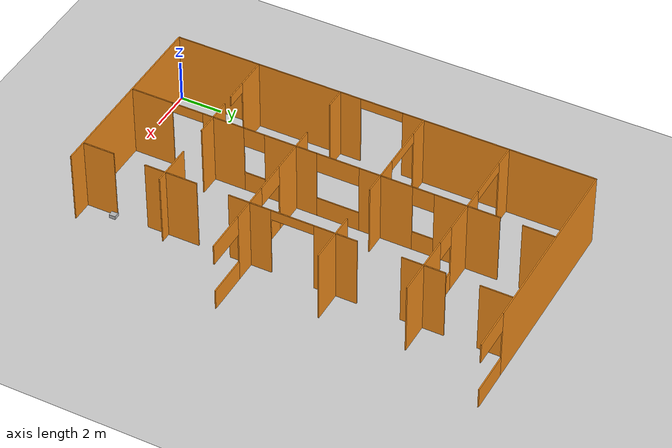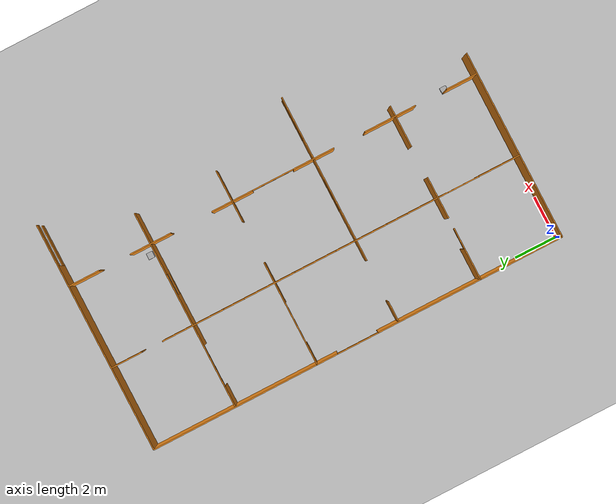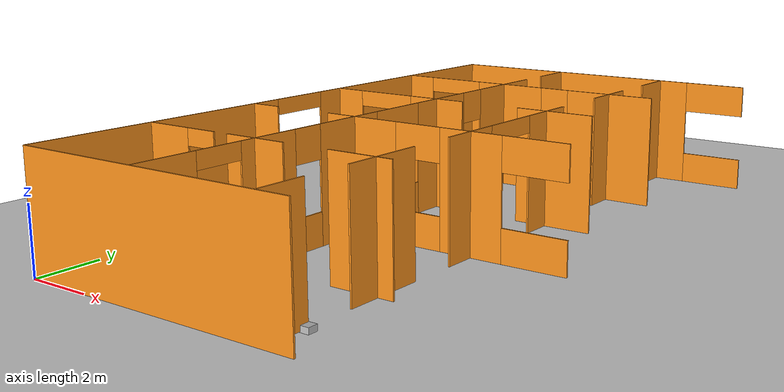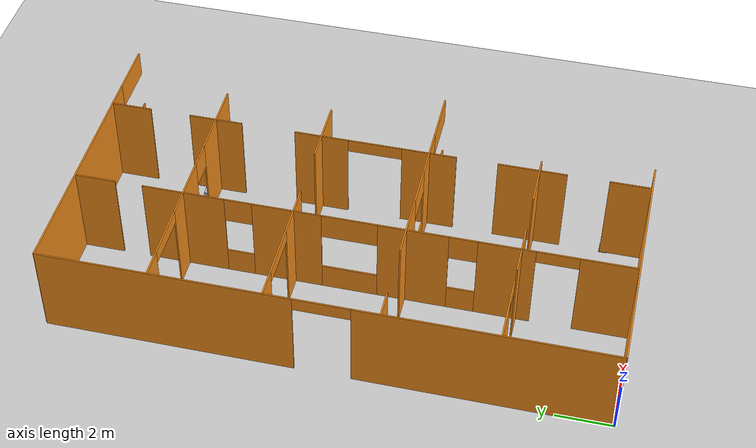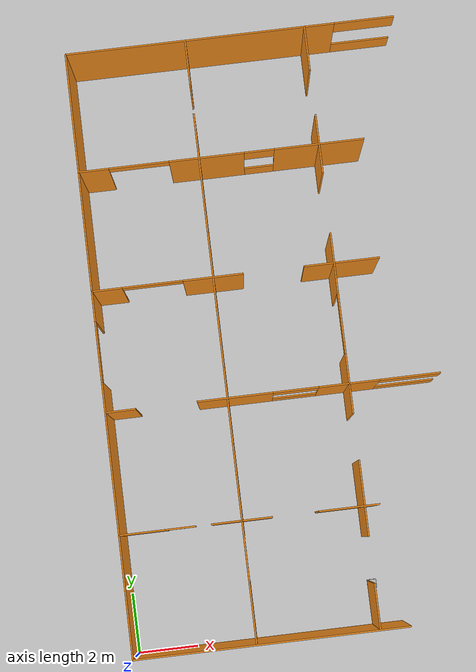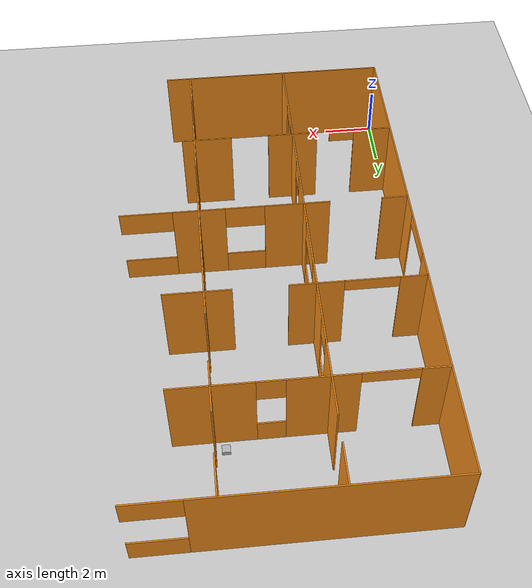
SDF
<sdf version="1.6">
 <world name="default">
  <include><uri>model://rirpc_box</uri><name>cube_3</name><pose>8.125 1.375 0 0 0 0</pose></include>
  <include><uri>model://rirpc_box</uri><name>cube_1</name><pose>7.625 16.375 0 0 0 0</pose></include>
  <model name="window_14">
   <pose>6.0 16.0 1.75 0 0 -3.141592653589793</pose>
   <link name="top">
    <pose>0 0 1.25 0 0 0</pose>
    <inertial>
     <mass>1</mass>
     <inertia><ixx>0</ixx><ixy>0</ixy><ixz>0</ixz><iyy>0</iyy><iyz>0</iyz><izz>0</izz></inertia>
    </inertial>
    <collision name="collision"><geometry><box><size>1.0 0.05 1.0</size></box></geometry></collision>
    <visual name="visual">
     <geometry><box><size>1.0 0.05 1.0</size></box></geometry>
     <material>
      <script><name>Gazebo/Orange</name><uri>file://media/materials/scripts/gazebo.material</uri></script>
     </material>
    </visual>
   </link>
   <link name="bot">
    <pose>0 0 -1.25 0 0 0</pose>
    <inertial>
     <mass>1</mass>
     <inertia><ixx>0</ixx><ixy>0</ixy><ixz>0</ixz><iyy>0</iyy><iyz>0</iyz><izz>0</izz></inertia>
    </inertial>
    <collision name="collision"><geometry><box><size>1.0 0.05 1.0</size></box></geometry></collision>
    <visual name="visual">
     <geometry><box><size>1.0 0.05 1.0</size></box></geometry>
     <material>
      <script><name>Gazebo/Orange</name><uri>file://media/materials/scripts/gazebo.material</uri></script>
     </material>
    </visual>
   </link>
   <static>1</static>
  </model>
  <model name="window_13">
   <pose>6.25 8.0 1.75 0 0 -3.141592653589793</pose>
   <link name="top">
    <pose>0 0 1.25 0 0 0</pose>
    <inertial>
     <mass>1</mass>
     <inertia><ixx>0</ixx><ixy>0</ixy><ixz>0</ixz><iyy>0</iyy><iyz>0</iyz><izz>0</izz></inertia>
    </inertial>
    <collision name="collision"><geometry><box><size>1.5 0.05 1.0</size></box></geometry></collision>
    <visual name="visual">
     <geometry><box><size>1.5 0.05 1.0</size></box></geometry>
     <material>
      <script><name>Gazebo/Orange</name><uri>file://media/materials/scripts/gazebo.material</uri></script>
     </material>
    </visual>
   </link>
   <link name="bot">
    <pose>0 0 -1.25 0 0 0</pose>
    <inertial>
     <mass>1</mass>
     <inertia><ixx>0</ixx><ixy>0</ixy><ixz>0</ixz><iyy>0</iyy><iyz>0</iyz><izz>0</izz></inertia>
    </inertial>
    <collision name="collision"><geometry><box><size>1.5 0.05 1.0</size></box></geometry></collision>
    <visual name="visual">
     <geometry><box><size>1.5 0.05 1.0</size></box></geometry>
     <material>
      <script><name>Gazebo/Orange</name><uri>file://media/materials/scripts/gazebo.material</uri></script>
     </material>
    </visual>
   </link>
   <static>1</static>
  </model>
  <model name="window_12">
   <pose>10.0 8.0 1.75 0 0 -3.141592653589793</pose>
   <link name="top">
    <pose>0 0 1.25 0 0 0</pose>
    <inertial>
     <mass>1</mass>
     <inertia><ixx>0</ixx><ixy>0</ixy><ixz>0</ixz><iyy>0</iyy><iyz>0</iyz><izz>0</izz></inertia>
    </inertial>
    <collision name="collision"><geometry><box><size>2.0 0.05 1.0</size></box></geometry></collision>
    <visual name="visual">
     <geometry><box><size>2.0 0.05 1.0</size></box></geometry>
     <material>
      <script><name>Gazebo/Orange</name><uri>file://media/materials/scripts/gazebo.material</uri></script>
     </material>
    </visual>
   </link>
   <link name="bot">
    <pose>0 0 -1.25 0 0 0</pose>
    <inertial>
     <mass>1</mass>
     <inertia><ixx>0</ixx><ixy>0</ixy><ixz>0</ixz><iyy>0</iyy><iyz>0</iyz><izz>0</izz></inertia>
    </inertial>
    <collision name="collision"><geometry><box><size>2.0 0.05 1.0</size></box></geometry></collision>
    <visual name="visual">
     <geometry><box><size>2.0 0.05 1.0</size></box></geometry>
     <material>
      <script><name>Gazebo/Orange</name><uri>file://media/materials/scripts/gazebo.material</uri></script>
     </material>
    </visual>
   </link>
   <static>1</static>
  </model>
  <model name="window_6">
   <pose>4.0 10.0 1.75 0 0 1.5707963267948966</pose>
   <link name="top">
    <pose>0 0 1.25 0 0 0</pose>
    <inertial>
     <mass>1</mass>
     <inertia><ixx>0</ixx><ixy>0</ixy><ixz>0</ixz><iyy>0</iyy><iyz>0</iyz><izz>0</izz></inertia>
    </inertial>
    <collision name="collision"><geometry><box><size>2.0 0.05 1.0</size></box></geometry></collision>
    <visual name="visual">
     <geometry><box><size>2.0 0.05 1.0</size></box></geometry>
     <material>
      <script><name>Gazebo/Orange</name><uri>file://media/materials/scripts/gazebo.material</uri></script>
     </material>
    </visual>
   </link>
   <link name="bot">
    <pose>0 0 -1.25 0 0 0</pose>
    <inertial>
     <mass>1</mass>
     <inertia><ixx>0</ixx><ixy>0</ixy><ixz>0</ixz><iyy>0</iyy><iyz>0</iyz><izz>0</izz></inertia>
    </inertial>
    <collision name="collision"><geometry><box><size>2.0 0.05 1.0</size></box></geometry></collision>
    <visual name="visual">
     <geometry><box><size>2.0 0.05 1.0</size></box></geometry>
     <material>
      <script><name>Gazebo/Orange</name><uri>file://media/materials/scripts/gazebo.material</uri></script>
     </material>
    </visual>
   </link>
   <static>1</static>
  </model>
  <model name="window_5">
   <pose>4.0 14.0 1.75 0 0 1.5707963267948966</pose>
   <link name="top">
    <pose>0 0 1.25 0 0 0</pose>
    <inertial>
     <mass>1</mass>
     <inertia><ixx>0</ixx><ixy>0</ixy><ixz>0</ixz><iyy>0</iyy><iyz>0</iyz><izz>0</izz></inertia>
    </inertial>
    <collision name="collision"><geometry><box><size>1.0 0.05 1.0</size></box></geometry></collision>
    <visual name="visual">
     <geometry><box><size>1.0 0.05 1.0</size></box></geometry>
     <material>
      <script><name>Gazebo/Orange</name><uri>file://media/materials/scripts/gazebo.material</uri></script>
     </material>
    </visual>
   </link>
   <link name="bot">
    <pose>0 0 -1.25 0 0 0</pose>
    <inertial>
     <mass>1</mass>
     <inertia><ixx>0</ixx><ixy>0</ixy><ixz>0</ixz><iyy>0</iyy><iyz>0</iyz><izz>0</izz></inertia>
    </inertial>
    <collision name="collision"><geometry><box><size>1.0 0.05 1.0</size></box></geometry></collision>
    <visual name="visual">
     <geometry><box><size>1.0 0.05 1.0</size></box></geometry>
     <material>
      <script><name>Gazebo/Orange</name><uri>file://media/materials/scripts/gazebo.material</uri></script>
     </material>
    </visual>
   </link>
   <static>1</static>
  </model>
  <model name="window_4">
   <pose>4.0 6.0 1.75 0 0 1.5707963267948966</pose>
   <link name="top">
    <pose>0 0 1.25 0 0 0</pose>
    <inertial>
     <mass>1</mass>
     <inertia><ixx>0</ixx><ixy>0</ixy><ixz>0</ixz><iyy>0</iyy><iyz>0</iyz><izz>0</izz></inertia>
    </inertial>
    <collision name="collision"><geometry><box><size>1.0 0.05 1.0</size></box></geometry></collision>
    <visual name="visual">
     <geometry><box><size>1.0 0.05 1.0</size></box></geometry>
     <material>
      <script><name>Gazebo/Orange</name><uri>file://media/materials/scripts/gazebo.material</uri></script>
     </material>
    </visual>
   </link>
   <link name="bot">
    <pose>0 0 -1.25 0 0 0</pose>
    <inertial>
     <mass>1</mass>
     <inertia><ixx>0</ixx><ixy>0</ixy><ixz>0</ixz><iyy>0</iyy><iyz>0</iyz><izz>0</izz></inertia>
    </inertial>
    <collision name="collision"><geometry><box><size>1.0 0.05 1.0</size></box></geometry></collision>
    <visual name="visual">
     <geometry><box><size>1.0 0.05 1.0</size></box></geometry>
     <material>
      <script><name>Gazebo/Orange</name><uri>file://media/materials/scripts/gazebo.material</uri></script>
     </material>
    </visual>
   </link>
   <static>1</static>
  </model>
  <model name="window_3">
   <pose>10.0 20.0 1.75 0 0 -0.0</pose>
   <link name="top">
    <pose>0 0 1.25 0 0 0</pose>
    <inertial>
     <mass>1</mass>
     <inertia><ixx>0</ixx><ixy>0</ixy><ixz>0</ixz><iyy>0</iyy><iyz>0</iyz><izz>0</izz></inertia>
    </inertial>
    <collision name="collision"><geometry><box><size>2.0 0.05 1.0</size></box></geometry></collision>
    <visual name="visual">
     <geometry><box><size>2.0 0.05 1.0</size></box></geometry>
     <material>
      <script><name>Gazebo/Orange</name><uri>file://media/materials/scripts/gazebo.material</uri></script>
     </material>
    </visual>
   </link>
   <link name="bot">
    <pose>0 0 -1.25 0 0 0</pose>
    <inertial>
     <mass>1</mass>
     <inertia><ixx>0</ixx><ixy>0</ixy><ixz>0</ixz><iyy>0</iyy><iyz>0</iyz><izz>0</izz></inertia>
    </inertial>
    <collision name="collision"><geometry><box><size>2.0 0.05 1.0</size></box></geometry></collision>
    <visual name="visual">
     <geometry><box><size>2.0 0.05 1.0</size></box></geometry>
     <material>
      <script><name>Gazebo/Orange</name><uri>file://media/materials/scripts/gazebo.material</uri></script>
     </material>
    </visual>
   </link>
   <static>1</static>
  </model>
  <model name="box_66">
   <pose>2.0 12.0 3.25 0 0 -3.141592653589793</pose>
   <link name="link">
    <inertial>
     <mass>1</mass>
     <inertia><ixx>0</ixx><ixy>0</ixy><ixz>0</ixz><iyy>0</iyy><iyz>0</iyz><izz>0</izz></inertia>
    </inertial>
    <collision name="collision"><geometry><box><size>2.0 0.05 0.5</size></box></geometry></collision>
    <visual name="visual">
     <geometry><box><size>2.0 0.05 0.5</size></box></geometry>
     <material>
      <script><name>Gazebo/Orange</name><uri>file://media/materials/scripts/gazebo.material</uri></script>
     </material>
    </visual>
   </link>
   <static>1</static>
  </model>
  <model name="box_65">
   <pose>4.0 2.75 3.25 0 0 1.5707963267948966</pose>
   <link name="link">
    <inertial>
     <mass>1</mass>
     <inertia><ixx>0</ixx><ixy>0</ixy><ixz>0</ixz><iyy>0</iyy><iyz>0</iyz><izz>0</izz></inertia>
    </inertial>
    <collision name="collision"><geometry><box><size>1.5 0.05 0.5</size></box></geometry></collision>
    <visual name="visual">
     <geometry><box><size>1.5 0.05 0.5</size></box></geometry>
     <material>
      <script><name>Gazebo/Orange</name><uri>file://media/materials/scripts/gazebo.material</uri></script>
     </material>
    </visual>
   </link>
   <static>1</static>
  </model>
  <model name="box_60">
   <pose>8.0 10.0 3.25 0 0 1.5707963267948966</pose>
   <link name="link">
    <inertial>
     <mass>1</mass>
     <inertia><ixx>0</ixx><ixy>0</ixy><ixz>0</ixz><iyy>0</iyy><iyz>0</iyz><izz>0</izz></inertia>
    </inertial>
    <collision name="collision"><geometry><box><size>2.0 0.05 0.5</size></box></geometry></collision>
    <visual name="visual">
     <geometry><box><size>2.0 0.05 0.5</size></box></geometry>
     <material>
      <script><name>Gazebo/Orange</name><uri>file://media/materials/scripts/gazebo.material</uri></script>
     </material>
    </visual>
   </link>
   <static>1</static>
  </model>
  <model name="box_59">
   <pose>2.0 4.0 3.25 0 0 -3.141592653589793</pose>
   <link name="link">
    <inertial>
     <mass>1</mass>
     <inertia><ixx>0</ixx><ixy>0</ixy><ixz>0</ixz><iyy>0</iyy><iyz>0</iyz><izz>0</izz></inertia>
    </inertial>
    <collision name="collision"><geometry><box><size>1.0 0.05 0.5</size></box></geometry></collision>
    <visual name="visual">
     <geometry><box><size>1.0 0.05 0.5</size></box></geometry>
     <material>
      <script><name>Gazebo/Orange</name><uri>file://media/materials/scripts/gazebo.material</uri></script>
     </material>
    </visual>
   </link>
   <static>1</static>
  </model>
  <model name="box_58">
   <pose>2.0 16.0 3.25 0 0 -3.141592653589793</pose>
   <link name="link">
    <inertial>
     <mass>1</mass>
     <inertia><ixx>0</ixx><ixy>0</ixy><ixz>0</ixz><iyy>0</iyy><iyz>0</iyz><izz>0</izz></inertia>
    </inertial>
    <collision name="collision"><geometry><box><size>2.0 0.05 0.5</size></box></geometry></collision>
    <visual name="visual">
     <geometry><box><size>2.0 0.05 0.5</size></box></geometry>
     <material>
      <script><name>Gazebo/Orange</name><uri>file://media/materials/scripts/gazebo.material</uri></script>
     </material>
    </visual>
   </link>
   <static>1</static>
  </model>
  <model name="box_57">
   <pose>0.0 10.0 3.25 0 0 -1.5707963267948966</pose>
   <link name="link">
    <inertial>
     <mass>1</mass>
     <inertia><ixx>0</ixx><ixy>0</ixy><ixz>0</ixz><iyy>0</iyy><iyz>0</iyz><izz>0</izz></inertia>
    </inertial>
    <collision name="collision"><geometry><box><size>2.0 0.05 0.5</size></box></geometry></collision>
    <visual name="visual">
     <geometry><box><size>2.0 0.05 0.5</size></box></geometry>
     <material>
      <script><name>Gazebo/Orange</name><uri>file://media/materials/scripts/gazebo.material</uri></script>
     </material>
    </visual>
   </link>
   <static>1</static>
  </model>
  <model name="box_55">
   <pose>8.0 16.0 1.75 0 0 1.5707963267948966</pose>
   <link name="link">
    <inertial>
     <mass>1</mass>
     <inertia><ixx>0</ixx><ixy>0</ixy><ixz>0</ixz><iyy>0</iyy><iyz>0</iyz><izz>0</izz></inertia>
    </inertial>
    <collision name="collision"><geometry><box><size>2.0 0.05 3.5</size></box></geometry></collision>
    <visual name="visual">
     <geometry><box><size>2.0 0.05 3.5</size></box></geometry>
     <material>
      <script><name>Gazebo/Orange</name><uri>file://media/materials/scripts/gazebo.material</uri></script>
     </material>
    </visual>
   </link>
   <static>1</static>
  </model>
  <model name="box_54">
   <pose>8.0 16.0 1.75 0 0 -3.141592653589793</pose>
   <link name="link">
    <inertial>
     <mass>1</mass>
     <inertia><ixx>0</ixx><ixy>0</ixy><ixz>0</ixz><iyy>0</iyy><iyz>0</iyz><izz>0</izz></inertia>
    </inertial>
    <collision name="collision"><geometry><box><size>3.0 0.05 3.5</size></box></geometry></collision>
    <visual name="visual">
     <geometry><box><size>3.0 0.05 3.5</size></box></geometry>
     <material>
      <script><name>Gazebo/Orange</name><uri>file://media/materials/scripts/gazebo.material</uri></script>
     </material>
    </visual>
   </link>
   <static>1</static>
  </model>
  <model name="box_53">
   <pose>8.25 12.0 1.75 0 0 -3.141592653589793</pose>
   <link name="link">
    <inertial>
     <mass>1</mass>
     <inertia><ixx>0</ixx><ixy>0</ixy><ixz>0</ixz><iyy>0</iyy><iyz>0</iyz><izz>0</izz></inertia>
    </inertial>
    <collision name="collision"><geometry><box><size>2.5 0.05 3.5</size></box></geometry></collision>
    <visual name="visual">
     <geometry><box><size>2.5 0.05 3.5</size></box></geometry>
     <material>
      <script><name>Gazebo/Orange</name><uri>file://media/materials/scripts/gazebo.material</uri></script>
     </material>
    </visual>
   </link>
   <static>1</static>
  </model>
  <model name="box_52">
   <pose>8.0 12.0 1.75 0 0 -1.5707963267948966</pose>
   <link name="link">
    <inertial>
     <mass>1</mass>
     <inertia><ixx>0</ixx><ixy>0</ixy><ixz>0</ixz><iyy>0</iyy><iyz>0</iyz><izz>0</izz></inertia>
    </inertial>
    <collision name="collision"><geometry><box><size>2.0 0.05 3.5</size></box></geometry></collision>
    <visual name="visual">
     <geometry><box><size>2.0 0.05 3.5</size></box></geometry>
     <material>
      <script><name>Gazebo/Orange</name><uri>file://media/materials/scripts/gazebo.material</uri></script>
     </material>
    </visual>
   </link>
   <static>1</static>
  </model>
  <model name="box_51">
   <pose>4.0 7.75 1.75 0 0 1.5707963267948966</pose>
   <link name="link">
    <inertial>
     <mass>1</mass>
     <inertia><ixx>0</ixx><ixy>0</ixy><ixz>0</ixz><iyy>0</iyy><iyz>0</iyz><izz>0</izz></inertia>
    </inertial>
    <collision name="collision"><geometry><box><size>2.5 0.05 3.5</size></box></geometry></collision>
    <visual name="visual">
     <geometry><box><size>2.5 0.05 3.5</size></box></geometry>
     <material>
      <script><name>Gazebo/Orange</name><uri>file://media/materials/scripts/gazebo.material</uri></script>
     </material>
    </visual>
   </link>
   <static>1</static>
  </model>
  <model name="box_50">
   <pose>4.25 8.0 1.75 0 0 -3.141592653589793</pose>
   <link name="link">
    <inertial>
     <mass>1</mass>
     <inertia><ixx>0</ixx><ixy>0</ixy><ixz>0</ixz><iyy>0</iyy><iyz>0</iyz><izz>0</izz></inertia>
    </inertial>
    <collision name="collision"><geometry><box><size>2.5 0.05 3.5</size></box></geometry></collision>
    <visual name="visual">
     <geometry><box><size>2.5 0.05 3.5</size></box></geometry>
     <material>
      <script><name>Gazebo/Orange</name><uri>file://media/materials/scripts/gazebo.material</uri></script>
     </material>
    </visual>
   </link>
   <static>1</static>
  </model>
  <model name="box_40">
   <pose>8.0 0.75 1.75 0 0 1.5707963267948966</pose>
   <link name="link">
    <inertial>
     <mass>1</mass>
     <inertia><ixx>0</ixx><ixy>0</ixy><ixz>0</ixz><iyy>0</iyy><iyz>0</iyz><izz>0</izz></inertia>
    </inertial>
    <collision name="collision"><geometry><box><size>1.5 0.05 3.5</size></box></geometry></collision>
    <visual name="visual">
     <geometry><box><size>1.5 0.05 3.5</size></box></geometry>
     <material>
      <script><name>Gazebo/Orange</name><uri>file://media/materials/scripts/gazebo.material</uri></script>
     </material>
    </visual>
   </link>
   <static>1</static>
  </model>
  <model name="box_39">
   <pose>4.0 1.0 1.75 0 0 1.5707963267948966</pose>
   <link name="link">
    <inertial>
     <mass>1</mass>
     <inertia><ixx>0</ixx><ixy>0</ixy><ixz>0</ixz><iyy>0</iyy><iyz>0</iyz><izz>0</izz></inertia>
    </inertial>
    <collision name="collision"><geometry><box><size>2.0 0.05 3.5</size></box></geometry></collision>
    <visual name="visual">
     <geometry><box><size>2.0 0.05 3.5</size></box></geometry>
     <material>
      <script><name>Gazebo/Orange</name><uri>file://media/materials/scripts/gazebo.material</uri></script>
     </material>
    </visual>
   </link>
   <static>1</static>
  </model>
  <model name="box_38">
   <pose>4.0 4.0 1.75 0 0 -3.141592653589793</pose>
   <link name="link">
    <inertial>
     <mass>1</mass>
     <inertia><ixx>0</ixx><ixy>0</ixy><ixz>0</ixz><iyy>0</iyy><iyz>0</iyz><izz>0</izz></inertia>
    </inertial>
    <collision name="collision"><geometry><box><size>2.0 0.05 3.5</size></box></geometry></collision>
    <visual name="visual">
     <geometry><box><size>2.0 0.05 3.5</size></box></geometry>
     <material>
      <script><name>Gazebo/Orange</name><uri>file://media/materials/scripts/gazebo.material</uri></script>
     </material>
    </visual>
   </link>
   <static>1</static>
  </model>
  <model name="box_37">
   <pose>4.0 4.5 1.75 0 0 1.5707963267948966</pose>
   <link name="link">
    <inertial>
     <mass>1</mass>
     <inertia><ixx>0</ixx><ixy>0</ixy><ixz>0</ixz><iyy>0</iyy><iyz>0</iyz><izz>0</izz></inertia>
    </inertial>
    <collision name="collision"><geometry><box><size>2.0 0.05 3.5</size></box></geometry></collision>
    <visual name="visual">
     <geometry><box><size>2.0 0.05 3.5</size></box></geometry>
     <material>
      <script><name>Gazebo/Orange</name><uri>file://media/materials/scripts/gazebo.material</uri></script>
     </material>
    </visual>
   </link>
   <static>1</static>
  </model>
  <model name="box_36">
   <pose>4.0 12.25 1.75 0 0 1.5707963267948966</pose>
   <link name="link">
    <inertial>
     <mass>1</mass>
     <inertia><ixx>0</ixx><ixy>0</ixy><ixz>0</ixz><iyy>0</iyy><iyz>0</iyz><izz>0</izz></inertia>
    </inertial>
    <collision name="collision"><geometry><box><size>2.5 0.05 3.5</size></box></geometry></collision>
    <visual name="visual">
     <geometry><box><size>2.5 0.05 3.5</size></box></geometry>
     <material>
      <script><name>Gazebo/Orange</name><uri>file://media/materials/scripts/gazebo.material</uri></script>
     </material>
    </visual>
   </link>
   <static>1</static>
  </model>
  <model name="box_35">
   <pose>4.0 12.0 1.75 0 0 -3.141592653589793</pose>
   <link name="link">
    <inertial>
     <mass>1</mass>
     <inertia><ixx>0</ixx><ixy>0</ixy><ixz>0</ixz><iyy>0</iyy><iyz>0</iyz><izz>0</izz></inertia>
    </inertial>
    <collision name="collision"><geometry><box><size>2.0 0.05 3.5</size></box></geometry></collision>
    <visual name="visual">
     <geometry><box><size>2.0 0.05 3.5</size></box></geometry>
     <material>
      <script><name>Gazebo/Orange</name><uri>file://media/materials/scripts/gazebo.material</uri></script>
     </material>
    </visual>
   </link>
   <static>1</static>
  </model>
  <model name="box_34">
   <pose>8.0 8.0 1.75 0 0 1.5707963267948966</pose>
   <link name="link">
    <inertial>
     <mass>1</mass>
     <inertia><ixx>0</ixx><ixy>0</ixy><ixz>0</ixz><iyy>0</iyy><iyz>0</iyz><izz>0</izz></inertia>
    </inertial>
    <collision name="collision"><geometry><box><size>2.0 0.05 3.5</size></box></geometry></collision>
    <visual name="visual">
     <geometry><box><size>2.0 0.05 3.5</size></box></geometry>
     <material>
      <script><name>Gazebo/Orange</name><uri>file://media/materials/scripts/gazebo.material</uri></script>
     </material>
    </visual>
   </link>
   <static>1</static>
  </model>
  <model name="box_33">
   <pose>8.0 8.0 1.75 0 0 -3.141592653589793</pose>
   <link name="link">
    <inertial>
     <mass>1</mass>
     <inertia><ixx>0</ixx><ixy>0</ixy><ixz>0</ixz><iyy>0</iyy><iyz>0</iyz><izz>0</izz></inertia>
    </inertial>
    <collision name="collision"><geometry><box><size>2.0 0.05 3.5</size></box></geometry></collision>
    <visual name="visual">
     <geometry><box><size>2.0 0.05 3.5</size></box></geometry>
     <material>
      <script><name>Gazebo/Orange</name><uri>file://media/materials/scripts/gazebo.material</uri></script>
     </material>
    </visual>
   </link>
   <static>1</static>
  </model>
  <model name="box_32">
   <pose>8.0 4.25 1.75 0 0 1.5707963267948966</pose>
   <link name="link">
    <inertial>
     <mass>1</mass>
     <inertia><ixx>0</ixx><ixy>0</ixy><ixz>0</ixz><iyy>0</iyy><iyz>0</iyz><izz>0</izz></inertia>
    </inertial>
    <collision name="collision"><geometry><box><size>2.5 0.05 3.5</size></box></geometry></collision>
    <visual name="visual">
     <geometry><box><size>2.5 0.05 3.5</size></box></geometry>
     <material>
      <script><name>Gazebo/Orange</name><uri>file://media/materials/scripts/gazebo.material</uri></script>
     </material>
    </visual>
   </link>
   <static>1</static>
  </model>
  <model name="box_31">
   <pose>7.5 4.0 1.75 0 0 -3.141592653589793</pose>
   <link name="link">
    <inertial>
     <mass>1</mass>
     <inertia><ixx>0</ixx><ixy>0</ixy><ixz>0</ixz><iyy>0</iyy><iyz>0</iyz><izz>0</izz></inertia>
    </inertial>
    <collision name="collision"><geometry><box><size>2.0 0.05 3.5</size></box></geometry></collision>
    <visual name="visual">
     <geometry><box><size>2.0 0.05 3.5</size></box></geometry>
     <material>
      <script><name>Gazebo/Orange</name><uri>file://media/materials/scripts/gazebo.material</uri></script>
     </material>
    </visual>
   </link>
   <static>1</static>
  </model>
  <model name="box_26">
   <pose>0.75 4.0 1.75 0 0 -3.141592653589793</pose>
   <link name="link">
    <inertial>
     <mass>1</mass>
     <inertia><ixx>0</ixx><ixy>0</ixy><ixz>0</ixz><iyy>0</iyy><iyz>0</iyz><izz>0</izz></inertia>
    </inertial>
    <collision name="collision"><geometry><box><size>1.5 0.05 3.5</size></box></geometry></collision>
    <visual name="visual">
     <geometry><box><size>1.5 0.05 3.5</size></box></geometry>
     <material>
      <script><name>Gazebo/Orange</name><uri>file://media/materials/scripts/gazebo.material</uri></script>
     </material>
    </visual>
   </link>
   <static>1</static>
  </model>
  <model name="box_25">
   <pose>0.5 8.0 1.75 0 0 -3.141592653589793</pose>
   <link name="link">
    <inertial>
     <mass>1</mass>
     <inertia><ixx>0</ixx><ixy>0</ixy><ixz>0</ixz><iyy>0</iyy><iyz>0</iyz><izz>0</izz></inertia>
    </inertial>
    <collision name="collision"><geometry><box><size>1.0 0.05 3.5</size></box></geometry></collision>
    <visual name="visual">
     <geometry><box><size>1.0 0.05 3.5</size></box></geometry>
     <material>
      <script><name>Gazebo/Orange</name><uri>file://media/materials/scripts/gazebo.material</uri></script>
     </material>
    </visual>
   </link>
   <static>1</static>
  </model>
  <model name="box_24">
   <pose>0.5 12.0 1.75 0 0 -3.141592653589793</pose>
   <link name="link">
    <inertial>
     <mass>1</mass>
     <inertia><ixx>0</ixx><ixy>0</ixy><ixz>0</ixz><iyy>0</iyy><iyz>0</iyz><izz>0</izz></inertia>
    </inertial>
    <collision name="collision"><geometry><box><size>1.0 0.05 3.5</size></box></geometry></collision>
    <visual name="visual">
     <geometry><box><size>1.0 0.05 3.5</size></box></geometry>
     <material>
      <script><name>Gazebo/Orange</name><uri>file://media/materials/scripts/gazebo.material</uri></script>
     </material>
    </visual>
   </link>
   <static>1</static>
  </model>
  <model name="box_16">
   <pose>8.0 19.25 1.75 0 0 1.5707963267948966</pose>
   <link name="link">
    <inertial>
     <mass>1</mass>
     <inertia><ixx>0</ixx><ixy>0</ixy><ixz>0</ixz><iyy>0</iyy><iyz>0</iyz><izz>0</izz></inertia>
    </inertial>
    <collision name="collision"><geometry><box><size>1.5 0.05 3.5</size></box></geometry></collision>
    <visual name="visual">
     <geometry><box><size>1.5 0.05 3.5</size></box></geometry>
     <material>
      <script><name>Gazebo/Orange</name><uri>file://media/materials/scripts/gazebo.material</uri></script>
     </material>
    </visual>
   </link>
   <static>1</static>
  </model>
  <model name="box_12">
   <pose>4.0 16.0 1.75 0 0 1.5707963267948966</pose>
   <link name="link">
    <inertial>
     <mass>1</mass>
     <inertia><ixx>0</ixx><ixy>0</ixy><ixz>0</ixz><iyy>0</iyy><iyz>0</iyz><izz>0</izz></inertia>
    </inertial>
    <collision name="collision"><geometry><box><size>3.0 0.05 3.5</size></box></geometry></collision>
    <visual name="visual">
     <geometry><box><size>3.0 0.05 3.5</size></box></geometry>
     <material>
      <script><name>Gazebo/Orange</name><uri>file://media/materials/scripts/gazebo.material</uri></script>
     </material>
    </visual>
   </link>
   <static>1</static>
  </model>
  <model name="box_11">
   <pose>4.0 19.25 1.75 0 0 1.5707963267948966</pose>
   <link name="link">
    <inertial>
     <mass>1</mass>
     <inertia><ixx>0</ixx><ixy>0</ixy><ixz>0</ixz><iyy>0</iyy><iyz>0</iyz><izz>0</izz></inertia>
    </inertial>
    <collision name="collision"><geometry><box><size>1.5 0.05 3.5</size></box></geometry></collision>
    <visual name="visual">
     <geometry><box><size>1.5 0.05 3.5</size></box></geometry>
     <material>
      <script><name>Gazebo/Orange</name><uri>file://media/materials/scripts/gazebo.material</uri></script>
     </material>
    </visual>
   </link>
   <static>1</static>
  </model>
  <model name="box_10">
   <pose>4.25 16.0 1.75 0 0 -3.141592653589793</pose>
   <link name="link">
    <inertial>
     <mass>1</mass>
     <inertia><ixx>0</ixx><ixy>0</ixy><ixz>0</ixz><iyy>0</iyy><iyz>0</iyz><izz>0</izz></inertia>
    </inertial>
    <collision name="collision"><geometry><box><size>2.5 0.05 3.5</size></box></geometry></collision>
    <visual name="visual">
     <geometry><box><size>2.5 0.05 3.5</size></box></geometry>
     <material>
      <script><name>Gazebo/Orange</name><uri>file://media/materials/scripts/gazebo.material</uri></script>
     </material>
    </visual>
   </link>
   <static>1</static>
  </model>
  <model name="box_9">
   <pose>0.5 16.0 1.75 0 0 -3.141592653589793</pose>
   <link name="link">
    <inertial>
     <mass>1</mass>
     <inertia><ixx>0</ixx><ixy>0</ixy><ixz>0</ixz><iyy>0</iyy><iyz>0</iyz><izz>0</izz></inertia>
    </inertial>
    <collision name="collision"><geometry><box><size>1.0 0.05 3.5</size></box></geometry></collision>
    <visual name="visual">
     <geometry><box><size>1.0 0.05 3.5</size></box></geometry>
     <material>
      <script><name>Gazebo/Orange</name><uri>file://media/materials/scripts/gazebo.material</uri></script>
     </material>
    </visual>
   </link>
   <static>1</static>
  </model>
  <model name="box_6">
   <pose>4.5 20.0 1.75 0 0 -3.141592653589793</pose>
   <link name="link">
    <inertial>
     <mass>1</mass>
     <inertia><ixx>0</ixx><ixy>0</ixy><ixz>0</ixz><iyy>0</iyy><iyz>0</iyz><izz>0</izz></inertia>
    </inertial>
    <collision name="collision"><geometry><box><size>9.0 0.05 3.5</size></box></geometry></collision>
    <visual name="visual">
     <geometry><box><size>9.0 0.05 3.5</size></box></geometry>
     <material>
      <script><name>Gazebo/Orange</name><uri>file://media/materials/scripts/gazebo.material</uri></script>
     </material>
    </visual>
   </link>
   <static>1</static>
  </model>
  <model name="box_3">
   <pose>4.5 0.0 1.75 0 0 -3.141592653589793</pose>
   <link name="link">
    <inertial>
     <mass>1</mass>
     <inertia><ixx>0</ixx><ixy>0</ixy><ixz>0</ixz><iyy>0</iyy><iyz>0</iyz><izz>0</izz></inertia>
    </inertial>
    <collision name="collision"><geometry><box><size>9.0 0.05 3.5</size></box></geometry></collision>
    <visual name="visual">
     <geometry><box><size>9.0 0.05 3.5</size></box></geometry>
     <material>
      <script><name>Gazebo/Orange</name><uri>file://media/materials/scripts/gazebo.material</uri></script>
     </material>
    </visual>
   </link>
   <static>1</static>
  </model>
  <model name="box_2">
   <pose>0.0 15.5 1.75 0 0 -1.5707963267948966</pose>
   <link name="link">
    <inertial>
     <mass>1</mass>
     <inertia><ixx>0</ixx><ixy>0</ixy><ixz>0</ixz><iyy>0</iyy><iyz>0</iyz><izz>0</izz></inertia>
    </inertial>
    <collision name="collision"><geometry><box><size>9.0 0.05 3.5</size></box></geometry></collision>
    <visual name="visual">
     <geometry><box><size>9.0 0.05 3.5</size></box></geometry>
     <material>
      <script><name>Gazebo/Orange</name><uri>file://media/materials/scripts/gazebo.material</uri></script>
     </material>
    </visual>
   </link>
   <static>1</static>
  </model>
  <model name="box_1">
   <pose>0.0 4.5 1.75 0 0 1.5707963267948966</pose>
   <link name="link">
    <inertial>
     <mass>1</mass>
     <inertia><ixx>0</ixx><ixy>0</ixy><ixz>0</ixz><iyy>0</iyy><iyz>0</iyz><izz>0</izz></inertia>
    </inertial>
    <collision name="collision"><geometry><box><size>9.0 0.05 3.5</size></box></geometry></collision>
    <visual name="visual">
     <geometry><box><size>9.0 0.05 3.5</size></box></geometry>
     <material>
      <script><name>Gazebo/Orange</name><uri>file://media/materials/scripts/gazebo.material</uri></script>
     </material>
    </visual>
   </link>
   <static>1</static>
  </model>
  <model name="ground_plane">
   <static>1</static>
   <link name="link">
    <collision name="collision">
     <geometry><plane><normal>0 0 1</normal><size>100 100</size></plane></geometry>
     <surface>
      <contact><collide_bitmask>65535</collide_bitmask></contact>
      <friction><ode><mu>100</mu><mu2>50</mu2></ode></friction>
     </surface>
    </collision>
    <visual name="visual">
     <cast_shadows>0</cast_shadows>
     <geometry><plane><normal>0 0 1</normal><size>100 100</size></plane></geometry>
     <material>
      <script><uri>file://media/materials/scripts/gazebo.material</uri><name>Gazebo/Grey</name></script>
     </material>
    </visual>
   </link>
  </model>
 </world>
</sdf>
